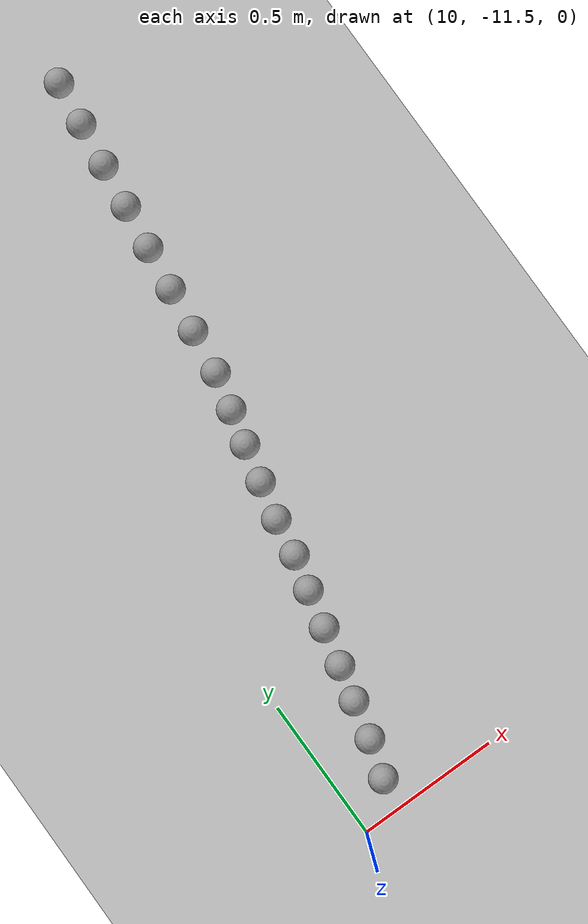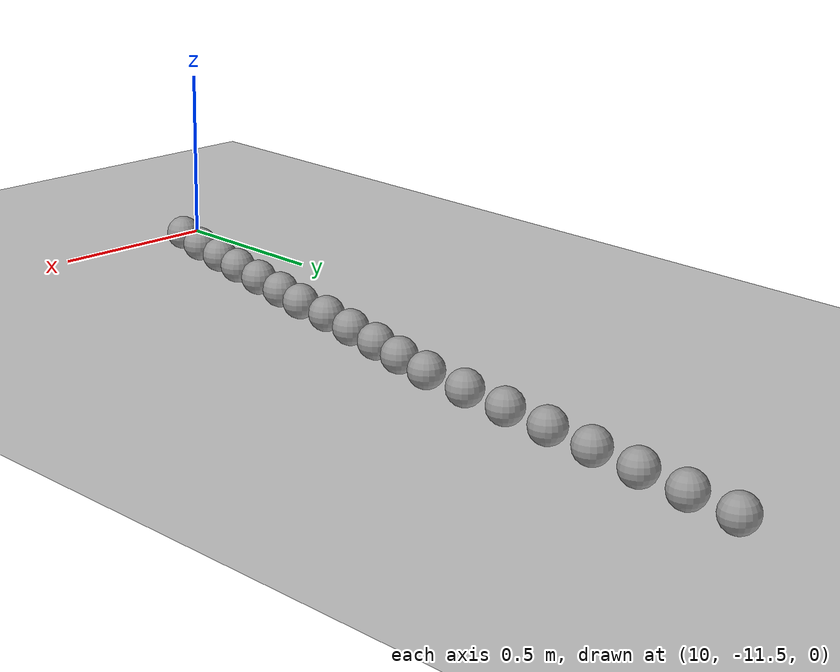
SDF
<sdf version="1.6">
 <world name="default">
  <model name="ground_plane">
   <static>1</static>
   <link name="link">
    <collision name="collision">
     <geometry><plane><normal>0 0 1</normal><size>100 100</size></plane></geometry>
     <surface><friction><ode><mu>100</mu><mu2>50</mu2></ode></friction></surface>
    </collision>
    <visual name="visual">
     <cast_shadows>0</cast_shadows>
     <geometry><plane><normal>0 0 1</normal><size>100 100</size></plane></geometry>
     <material>
      <script><uri>file://media/materials/scripts/gazebo.material</uri><name>Gazebo/Grey</name></script>
     </material>
    </visual>
   </link>
  </model>
  <model name="unit_sphere_0_483">
   <pose>10.620000 -8.888000 0.050000 0 -0 0</pose>
   <link name="link">
    <inertial>
     <mass>1</mass>
     <inertia><ixx>0.1</ixx><ixy>0</ixy><ixz>0</ixz><iyy>0.1</iyy><iyz>0</iyz><izz>0.1</izz></inertia>
    </inertial>
    <collision name="collision"><geometry><sphere><radius>0.050000</radius></sphere></geometry></collision>
    <visual name="visual">
     <geometry><sphere><radius>0.050000</radius></sphere></geometry>
     <material>
      <script><name>Gazebo/Grey</name><uri>file://media/materials/scripts/gazebo.material</uri></script>
     </material>
    </visual>
   </link>
  </model>
  <model name="unit_sphere_0_484">
   <pose>10.600000 -9.044000 0.050000 0 -0 0</pose>
   <link name="link">
    <inertial>
     <mass>1</mass>
     <inertia><ixx>0.1</ixx><ixy>0</ixy><ixz>0</ixz><iyy>0.1</iyy><iyz>0</iyz><izz>0.1</izz></inertia>
    </inertial>
    <collision name="collision"><geometry><sphere><radius>0.050000</radius></sphere></geometry></collision>
    <visual name="visual">
     <geometry><sphere><radius>0.050000</radius></sphere></geometry>
     <material>
      <script><name>Gazebo/Grey</name><uri>file://media/materials/scripts/gazebo.material</uri></script>
     </material>
    </visual>
   </link>
  </model>
  <model name="unit_sphere_0_485">
   <pose>10.580000 -9.200000 0.050000 0 -0 0</pose>
   <link name="link">
    <inertial>
     <mass>1</mass>
     <inertia><ixx>0.1</ixx><ixy>0</ixy><ixz>0</ixz><iyy>0.1</iyy><iyz>0</iyz><izz>0.1</izz></inertia>
    </inertial>
    <collision name="collision"><geometry><sphere><radius>0.050000</radius></sphere></geometry></collision>
    <visual name="visual">
     <geometry><sphere><radius>0.050000</radius></sphere></geometry>
     <material>
      <script><name>Gazebo/Grey</name><uri>file://media/materials/scripts/gazebo.material</uri></script>
     </material>
    </visual>
   </link>
  </model>
  <model name="unit_sphere_0_486">
   <pose>10.560000 -9.356000 0.050000 0 -0 0</pose>
   <link name="link">
    <inertial>
     <mass>1</mass>
     <inertia><ixx>0.1</ixx><ixy>0</ixy><ixz>0</ixz><iyy>0.1</iyy><iyz>0</iyz><izz>0.1</izz></inertia>
    </inertial>
    <collision name="collision"><geometry><sphere><radius>0.050000</radius></sphere></geometry></collision>
    <visual name="visual">
     <geometry><sphere><radius>0.050000</radius></sphere></geometry>
     <material>
      <script><name>Gazebo/Grey</name><uri>file://media/materials/scripts/gazebo.material</uri></script>
     </material>
    </visual>
   </link>
  </model>
  <model name="unit_sphere_0_487">
   <pose>10.540000 -9.512000 0.050000 0 -0 0</pose>
   <link name="link">
    <inertial>
     <mass>1</mass>
     <inertia><ixx>0.1</ixx><ixy>0</ixy><ixz>0</ixz><iyy>0.1</iyy><iyz>0</iyz><izz>0.1</izz></inertia>
    </inertial>
    <collision name="collision"><geometry><sphere><radius>0.050000</radius></sphere></geometry></collision>
    <visual name="visual">
     <geometry><sphere><radius>0.050000</radius></sphere></geometry>
     <material>
      <script><name>Gazebo/Grey</name><uri>file://media/materials/scripts/gazebo.material</uri></script>
     </material>
    </visual>
   </link>
  </model>
  <model name="unit_sphere_0_488">
   <pose>10.520000 -9.668000 0.050000 0 -0 0</pose>
   <link name="link">
    <inertial>
     <mass>1</mass>
     <inertia><ixx>0.1</ixx><ixy>0</ixy><ixz>0</ixz><iyy>0.1</iyy><iyz>0</iyz><izz>0.1</izz></inertia>
    </inertial>
    <collision name="collision"><geometry><sphere><radius>0.050000</radius></sphere></geometry></collision>
    <visual name="visual">
     <geometry><sphere><radius>0.050000</radius></sphere></geometry>
     <material>
      <script><name>Gazebo/Grey</name><uri>file://media/materials/scripts/gazebo.material</uri></script>
     </material>
    </visual>
   </link>
  </model>
  <model name="unit_sphere_0_489">
   <pose>10.500000 -9.824000 0.050000 0 -0 0</pose>
   <link name="link">
    <inertial>
     <mass>1</mass>
     <inertia><ixx>0.1</ixx><ixy>0</ixy><ixz>0</ixz><iyy>0.1</iyy><iyz>0</iyz><izz>0.1</izz></inertia>
    </inertial>
    <collision name="collision"><geometry><sphere><radius>0.050000</radius></sphere></geometry></collision>
    <visual name="visual">
     <geometry><sphere><radius>0.050000</radius></sphere></geometry>
     <material>
      <script><name>Gazebo/Grey</name><uri>file://media/materials/scripts/gazebo.material</uri></script>
     </material>
    </visual>
   </link>
  </model>
  <model name="unit_sphere_0_490">
   <pose>10.480000 -9.980000 0.050000 0 -0 0</pose>
   <link name="link">
    <inertial>
     <mass>1</mass>
     <inertia><ixx>0.1</ixx><ixy>0</ixy><ixz>0</ixz><iyy>0.1</iyy><iyz>0</iyz><izz>0.1</izz></inertia>
    </inertial>
    <collision name="collision"><geometry><sphere><radius>0.050000</radius></sphere></geometry></collision>
    <visual name="visual">
     <geometry><sphere><radius>0.050000</radius></sphere></geometry>
     <material>
      <script><name>Gazebo/Grey</name><uri>file://media/materials/scripts/gazebo.material</uri></script>
     </material>
    </visual>
   </link>
  </model>
  <model name="unit_sphere_0_491">
   <pose>10.450000 -10.110000 0.050000 0 -0 0</pose>
   <link name="link">
    <inertial>
     <mass>1</mass>
     <inertia><ixx>0.1</ixx><ixy>0</ixy><ixz>0</ixz><iyy>0.1</iyy><iyz>0</iyz><izz>0.1</izz></inertia>
    </inertial>
    <collision name="collision"><geometry><sphere><radius>0.050000</radius></sphere></geometry></collision>
    <visual name="visual">
     <geometry><sphere><radius>0.050000</radius></sphere></geometry>
     <material>
      <script><name>Gazebo/Grey</name><uri>file://media/materials/scripts/gazebo.material</uri></script>
     </material>
    </visual>
   </link>
  </model>
  <model name="unit_sphere_0_492">
   <pose>10.420000 -10.230000 0.050000 0 -0 0</pose>
   <link name="link">
    <inertial>
     <mass>1</mass>
     <inertia><ixx>0.1</ixx><ixy>0</ixy><ixz>0</ixz><iyy>0.1</iyy><iyz>0</iyz><izz>0.1</izz></inertia>
    </inertial>
    <collision name="collision"><geometry><sphere><radius>0.050000</radius></sphere></geometry></collision>
    <visual name="visual">
     <geometry><sphere><radius>0.050000</radius></sphere></geometry>
     <material>
      <script><name>Gazebo/Grey</name><uri>file://media/materials/scripts/gazebo.material</uri></script>
     </material>
    </visual>
   </link>
  </model>
  <model name="unit_sphere_0_493">
   <pose>10.390000 -10.360000 0.050000 0 -0 0</pose>
   <link name="link">
    <inertial>
     <mass>1</mass>
     <inertia><ixx>0.1</ixx><ixy>0</ixy><ixz>0</ixz><iyy>0.1</iyy><iyz>0</iyz><izz>0.1</izz></inertia>
    </inertial>
    <collision name="collision"><geometry><sphere><radius>0.050000</radius></sphere></geometry></collision>
    <visual name="visual">
     <geometry><sphere><radius>0.050000</radius></sphere></geometry>
     <material>
      <script><name>Gazebo/Grey</name><uri>file://media/materials/scripts/gazebo.material</uri></script>
     </material>
    </visual>
   </link>
  </model>
  <model name="unit_sphere_0_494">
   <pose>10.360000 -10.490000 0.050000 0 -0 0</pose>
   <link name="link">
    <inertial>
     <mass>1</mass>
     <inertia><ixx>0.1</ixx><ixy>0</ixy><ixz>0</ixz><iyy>0.1</iyy><iyz>0</iyz><izz>0.1</izz></inertia>
    </inertial>
    <collision name="collision"><geometry><sphere><radius>0.050000</radius></sphere></geometry></collision>
    <visual name="visual">
     <geometry><sphere><radius>0.050000</radius></sphere></geometry>
     <material>
      <script><name>Gazebo/Grey</name><uri>file://media/materials/scripts/gazebo.material</uri></script>
     </material>
    </visual>
   </link>
  </model>
  <model name="unit_sphere_0_495">
   <pose>10.340000 -10.620000 0.050000 0 -0 0</pose>
   <link name="link">
    <inertial>
     <mass>1</mass>
     <inertia><ixx>0.1</ixx><ixy>0</ixy><ixz>0</ixz><iyy>0.1</iyy><iyz>0</iyz><izz>0.1</izz></inertia>
    </inertial>
    <collision name="collision"><geometry><sphere><radius>0.050000</radius></sphere></geometry></collision>
    <visual name="visual">
     <geometry><sphere><radius>0.050000</radius></sphere></geometry>
     <material>
      <script><name>Gazebo/Grey</name><uri>file://media/materials/scripts/gazebo.material</uri></script>
     </material>
    </visual>
   </link>
  </model>
  <model name="unit_sphere_0_496">
   <pose>10.310000 -10.740000 0.050000 0 -0 0</pose>
   <link name="link">
    <inertial>
     <mass>1</mass>
     <inertia><ixx>0.1</ixx><ixy>0</ixy><ixz>0</ixz><iyy>0.1</iyy><iyz>0</iyz><izz>0.1</izz></inertia>
    </inertial>
    <collision name="collision"><geometry><sphere><radius>0.050000</radius></sphere></geometry></collision>
    <visual name="visual">
     <geometry><sphere><radius>0.050000</radius></sphere></geometry>
     <material>
      <script><name>Gazebo/Grey</name><uri>file://media/materials/scripts/gazebo.material</uri></script>
     </material>
    </visual>
   </link>
  </model>
  <model name="unit_sphere_0_497">
   <pose>10.280000 -10.870000 0.050000 0 -0 0</pose>
   <link name="link">
    <inertial>
     <mass>1</mass>
     <inertia><ixx>0.1</ixx><ixy>0</ixy><ixz>0</ixz><iyy>0.1</iyy><iyz>0</iyz><izz>0.1</izz></inertia>
    </inertial>
    <collision name="collision"><geometry><sphere><radius>0.050000</radius></sphere></geometry></collision>
    <visual name="visual">
     <geometry><sphere><radius>0.050000</radius></sphere></geometry>
     <material>
      <script><name>Gazebo/Grey</name><uri>file://media/materials/scripts/gazebo.material</uri></script>
     </material>
    </visual>
   </link>
  </model>
  <model name="unit_sphere_0_498">
   <pose>10.250000 -11.000000 0.050000 0 -0 0</pose>
   <link name="link">
    <inertial>
     <mass>1</mass>
     <inertia><ixx>0.1</ixx><ixy>0</ixy><ixz>0</ixz><iyy>0.1</iyy><iyz>0</iyz><izz>0.1</izz></inertia>
    </inertial>
    <collision name="collision"><geometry><sphere><radius>0.050000</radius></sphere></geometry></collision>
    <visual name="visual">
     <geometry><sphere><radius>0.050000</radius></sphere></geometry>
     <material>
      <script><name>Gazebo/Grey</name><uri>file://media/materials/scripts/gazebo.material</uri></script>
     </material>
    </visual>
   </link>
  </model>
  <model name="unit_sphere_0_499">
   <pose>10.220000 -11.120000 0.050000 0 -0 0</pose>
   <link name="link">
    <inertial>
     <mass>1</mass>
     <inertia><ixx>0.1</ixx><ixy>0</ixy><ixz>0</ixz><iyy>0.1</iyy><iyz>0</iyz><izz>0.1</izz></inertia>
    </inertial>
    <collision name="collision"><geometry><sphere><radius>0.050000</radius></sphere></geometry></collision>
    <visual name="visual">
     <geometry><sphere><radius>0.050000</radius></sphere></geometry>
     <material>
      <script><name>Gazebo/Grey</name><uri>file://media/materials/scripts/gazebo.material</uri></script>
     </material>
    </visual>
   </link>
  </model>
  <model name="unit_sphere_0_500">
   <pose>10.190000 -11.250000 0.050000 0 -0 0</pose>
   <link name="link">
    <inertial>
     <mass>1</mass>
     <inertia><ixx>0.1</ixx><ixy>0</ixy><ixz>0</ixz><iyy>0.1</iyy><iyz>0</iyz><izz>0.1</izz></inertia>
    </inertial>
    <collision name="collision"><geometry><sphere><radius>0.050000</radius></sphere></geometry></collision>
    <visual name="visual">
     <geometry><sphere><radius>0.050000</radius></sphere></geometry>
     <material>
      <script><name>Gazebo/Grey</name><uri>file://media/materials/scripts/gazebo.material</uri></script>
     </material>
    </visual>
   </link>
  </model>
  <model name="unit_sphere_0_501">
   <pose>10.150000 -11.380000 0.050000 0 -0 0</pose>
   <link name="link">
    <inertial>
     <mass>1</mass>
     <inertia><ixx>0.1</ixx><ixy>0</ixy><ixz>0</ixz><iyy>0.1</iyy><iyz>0</iyz><izz>0.1</izz></inertia>
    </inertial>
    <collision name="collision"><geometry><sphere><radius>0.050000</radius></sphere></geometry></collision>
    <visual name="visual">
     <geometry><sphere><radius>0.050000</radius></sphere></geometry>
     <material>
      <script><name>Gazebo/Grey</name><uri>file://media/materials/scripts/gazebo.material</uri></script>
     </material>
    </visual>
   </link>
  </model>
 </world>
</sdf>
